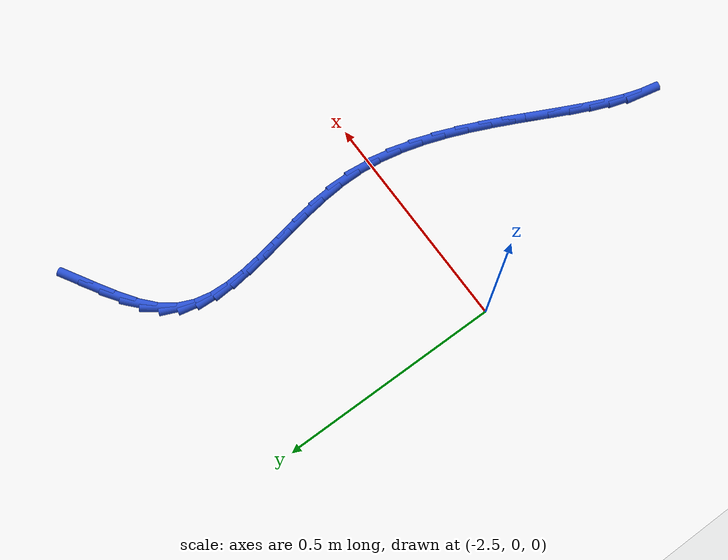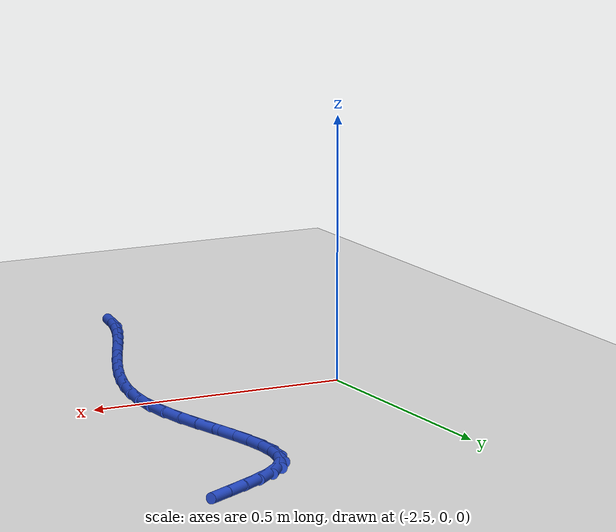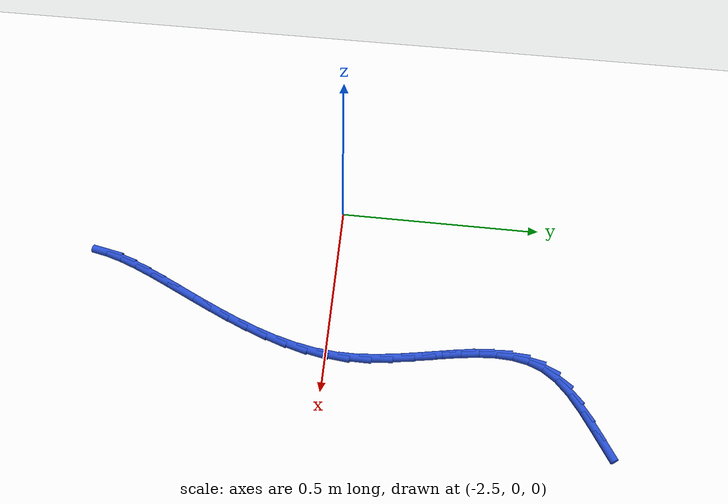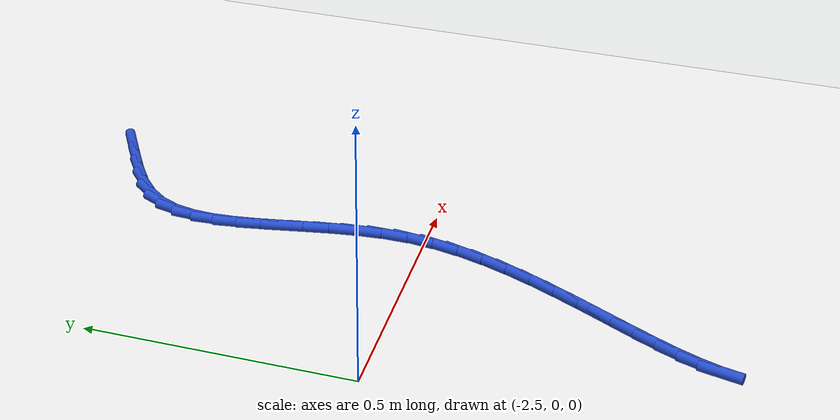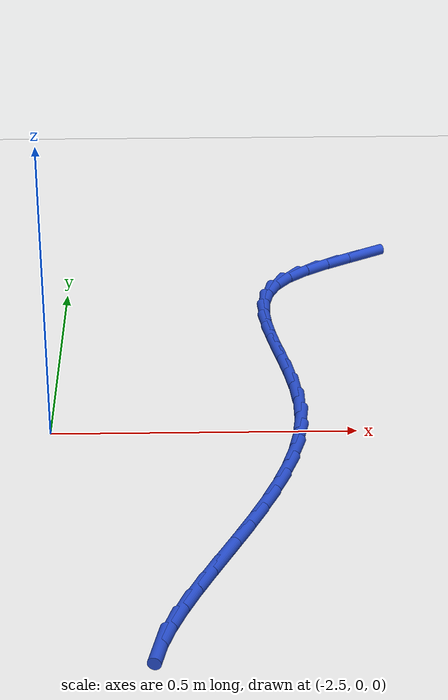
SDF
<sdf version="1.6">
 <world name="default">
  <model name="ground_plane">
   <static>1</static>
   <link name="link">
    <collision name="collision">
     <geometry><plane><normal>0 0 1</normal><size>100 100</size></plane></geometry>
     <surface><friction><ode><mu>100</mu><mu2>50</mu2></ode></friction></surface>
    </collision>
    <visual name="visual">
     <cast_shadows>0</cast_shadows>
     <geometry><plane><normal>0 0 1</normal><size>100 100</size></plane></geometry>
     <material>
      <script><uri>file://media/materials/scripts/gazebo.material</uri><name>Gazebo/WhiteGlow</name></script>
     </material>
    </visual>
   </link>
  </model>
  <model name="line">
   <link name="link_75">
    <pose>-1.9325983767863815 0.6531765410660323 0.01 0 1.57 0.5310814304035765</pose>
    <collision name="collision">
     <geometry><cylinder><radius>0.01</radius><length>0.08</length></cylinder></geometry>
    </collision>
    <visual name="visual">
     <material>
      <script><name>Gazebo/Blue</name><uri>file://media/materials/scripts/gazebo.material</uri></script>
     </material>
     <geometry><cylinder><radius>0.01</radius><length>0.08</length></cylinder></geometry>
    </visual>
   </link>
   <link name="link_76">
    <pose>-1.975630938828137 0.6279004784918562 0.01 0 1.57 0.5468164744232249</pose>
    <collision name="collision">
     <geometry><cylinder><radius>0.01</radius><length>0.08</length></cylinder></geometry>
    </collision>
    <visual name="visual">
     <material>
      <script><name>Gazebo/Blue</name><uri>file://media/materials/scripts/gazebo.material</uri></script>
     </material>
     <geometry><cylinder><radius>0.01</radius><length>0.08</length></cylinder></geometry>
    </visual>
   </link>
   <link name="link_77">
    <pose>-2.017422548014027 0.6024605249227009 0.01 0 1.57 0.6085418219450672</pose>
    <collision name="collision">
     <geometry><cylinder><radius>0.01</radius><length>0.08</length></cylinder></geometry>
    </collision>
    <visual name="visual">
     <material>
      <script><name>Gazebo/Blue</name><uri>file://media/materials/scripts/gazebo.material</uri></script>
     </material>
     <geometry><cylinder><radius>0.01</radius><length>0.08</length></cylinder></geometry>
    </visual>
   </link>
   <link name="link_78">
    <pose>-2.0555550667328264 0.5758916699838457 0.01 0 1.57 0.7295828029736275</pose>
    <collision name="collision">
     <geometry><cylinder><radius>0.01</radius><length>0.08</length></cylinder></geometry>
    </collision>
    <visual name="visual">
     <material>
      <script><name>Gazebo/Blue</name><uri>file://media/materials/scripts/gazebo.material</uri></script>
     </material>
     <geometry><cylinder><radius>0.01</radius><length>0.08</length></cylinder></geometry>
    </visual>
   </link>
   <link name="link_79">
    <pose>-2.087610357373314 0.5472289033005686 0.01 0 1.57 0.927959740066827</pose>
    <collision name="collision">
     <geometry><cylinder><radius>0.01</radius><length>0.08</length></cylinder></geometry>
    </collision>
    <visual name="visual">
     <material>
      <script><name>Gazebo/Blue</name><uri>file://media/materials/scripts/gazebo.material</uri></script>
     </material>
     <geometry><cylinder><radius>0.01</radius><length>0.08</length></cylinder></geometry>
    </visual>
   </link>
   <link name="link_80">
    <pose>-2.111328314406282 0.5155611409085498 0.01 0 1.57 1.160115067046089</pose>
    <collision name="collision">
     <geometry><cylinder><radius>0.01</radius><length>0.08</length></cylinder></geometry>
    </collision>
    <visual name="visual">
     <material>
      <script><name>Gazebo/Blue</name><uri>file://media/materials/scripts/gazebo.material</uri></script>
     </material>
     <geometry><cylinder><radius>0.01</radius><length>0.08</length></cylinder></geometry>
    </visual>
   </link>
   <link name="link_81">
    <pose>-2.1265158558447004 0.4806826439760662 0.01 0 1.57 1.3643707255260886</pose>
    <collision name="collision">
     <geometry><cylinder><radius>0.01</radius><length>0.08</length></cylinder></geometry>
    </collision>
    <visual name="visual">
     <material>
      <script><name>Gazebo/Blue</name><uri>file://media/materials/scripts/gazebo.material</uri></script>
     </material>
     <geometry><cylinder><radius>0.01</radius><length>0.08</length></cylinder></geometry>
    </visual>
   </link>
   <link name="link_82">
    <pose>-2.1344314247722513 0.44288298788653424 0.01 0 1.57 1.5230325087027914</pose>
    <collision name="collision">
     <geometry><cylinder><radius>0.01</radius><length>0.08</length></cylinder></geometry>
    </collision>
    <visual name="visual">
     <material>
      <script><name>Gazebo/Blue</name><uri>file://media/materials/scripts/gazebo.material</uri></script>
     </material>
     <geometry><cylinder><radius>0.01</radius><length>0.08</length></cylinder></geometry>
    </visual>
   </link>
   <link name="link_83">
    <pose>-2.1363635542602153 0.4024620158436733 0.01 0 1.57 -1.506248338405666</pose>
    <collision name="collision">
     <geometry><cylinder><radius>0.01</radius><length>0.08</length></cylinder></geometry>
    </collision>
    <visual name="visual">
     <material>
      <script><name>Gazebo/Blue</name><uri>file://media/materials/scripts/gazebo.material</uri></script>
     </material>
     <geometry><cylinder><radius>0.01</radius><length>0.08</length></cylinder></geometry>
    </visual>
   </link>
   <link name="link_84">
    <pose>-2.1336007773798773 0.35971957105120494 0.01 0 1.57 -1.4338442575977404</pose>
    <collision name="collision">
     <geometry><cylinder><radius>0.01</radius><length>0.08</length></cylinder></geometry>
    </collision>
    <visual name="visual">
     <material>
      <script><name>Gazebo/Blue</name><uri>file://media/materials/scripts/gazebo.material</uri></script>
     </material>
     <geometry><cylinder><radius>0.01</radius><length>0.08</length></cylinder></geometry>
    </visual>
   </link>
   <link name="link_85">
    <pose>-2.12743162720252 0.3149554967128486 0.01 0 1.57 -1.394380516637745</pose>
    <collision name="collision">
     <geometry><cylinder><radius>0.01</radius><length>0.08</length></cylinder></geometry>
    </collision>
    <visual name="visual">
     <material>
      <script><name>Gazebo/Blue</name><uri>file://media/materials/scripts/gazebo.material</uri></script>
     </material>
     <geometry><cylinder><radius>0.01</radius><length>0.08</length></cylinder></geometry>
    </visual>
   </link>
   <link name="link_86">
    <pose>-2.1191446367994278 0.26846963603232554 0.01 0 1.57 -1.3827560793281328</pose>
    <collision name="collision">
     <geometry><cylinder><radius>0.01</radius><length>0.08</length></cylinder></geometry>
    </collision>
    <visual name="visual">
     <material>
      <script><name>Gazebo/Blue</name><uri>file://media/materials/scripts/gazebo.material</uri></script>
     </material>
     <geometry><cylinder><radius>0.01</radius><length>0.08</length></cylinder></geometry>
    </visual>
   </link>
   <link name="link_87">
    <pose>-2.110028339241883 0.22056183221335587 0.01 0 1.57 -1.396030458742246</pose>
    <collision name="collision">
     <geometry><cylinder><radius>0.01</radius><length>0.08</length></cylinder></geometry>
    </collision>
    <visual name="visual">
     <material>
      <script><name>Gazebo/Blue</name><uri>file://media/materials/scripts/gazebo.material</uri></script>
     </material>
     <geometry><cylinder><radius>0.01</radius><length>0.08</length></cylinder></geometry>
    </visual>
   </link>
   <link name="link_88">
    <pose>-2.1013712676011678 0.1715319284596593 0.01 0 1.57 -1.433077609020951</pose>
    <collision name="collision">
     <geometry><cylinder><radius>0.01</radius><length>0.08</length></cylinder></geometry>
    </collision>
    <visual name="visual">
     <material>
      <script><name>Gazebo/Blue</name><uri>file://media/materials/scripts/gazebo.material</uri></script>
     </material>
     <geometry><cylinder><radius>0.01</radius><length>0.08</length></cylinder></geometry>
    </visual>
   </link>
   <link name="link_89">
    <pose>-2.094461954948568 0.12167976797495725 0.01 0 1.57 -1.4940628515996888</pose>
    <collision name="collision">
     <geometry><cylinder><radius>0.01</radius><length>0.08</length></cylinder></geometry>
    </collision>
    <visual name="visual">
     <material>
      <script><name>Gazebo/Blue</name><uri>file://media/materials/scripts/gazebo.material</uri></script>
     </material>
     <geometry><cylinder><radius>0.01</radius><length>0.08</length></cylinder></geometry>
    </visual>
   </link>
   <link name="link_90">
    <pose>-2.0905889343553654 0.07130519396296965 0.01 0 1.57 1.561871067462007</pose>
    <collision name="collision">
     <geometry><cylinder><radius>0.01</radius><length>0.08</length></cylinder></geometry>
    </collision>
    <visual name="visual">
     <material>
      <script><name>Gazebo/Blue</name><uri>file://media/materials/scripts/gazebo.material</uri></script>
     </material>
     <geometry><cylinder><radius>0.01</radius><length>0.08</length></cylinder></geometry>
    </visual>
   </link>
   <link name="link_91">
    <pose>-2.0910405391108355 0.020708035167543035 0.01 0 1.57 1.4598494476639219</pose>
    <collision name="collision">
     <geometry><cylinder><radius>0.01</radius><length>0.08</length></cylinder></geometry>
    </collision>
    <visual name="visual">
     <material>
      <script><name>Gazebo/Blue</name><uri>file://media/materials/scripts/gazebo.material</uri></script>
     </material>
     <geometry><cylinder><radius>0.01</radius><length>0.08</length></cylinder></geometry>
    </visual>
   </link>
   <link name="link_92">
    <pose>-2.096672168471097 -0.029843214678997743 0.01 0 1.57 1.3686171295703724</pose>
    <collision name="collision">
     <geometry><cylinder><radius>0.01</radius><length>0.08</length></cylinder></geometry>
    </collision>
    <visual name="visual">
     <material>
      <script><name>Gazebo/Blue</name><uri>file://media/materials/scripts/gazebo.material</uri></script>
     </material>
     <geometry><cylinder><radius>0.01</radius><length>0.08</length></cylinder></geometry>
    </visual>
   </link>
   <link name="link_93">
    <pose>-2.1069897278088767 -0.08017773586194539 0.01 0 1.57 1.293029440242554</pose>
    <collision name="collision">
     <geometry><cylinder><radius>0.01</radius><length>0.08</length></cylinder></geometry>
    </collision>
    <visual name="visual">
     <material>
      <script><name>Gazebo/Blue</name><uri>file://media/materials/scripts/gazebo.material</uri></script>
     </material>
     <geometry><cylinder><radius>0.01</radius><length>0.08</length></cylinder></geometry>
    </visual>
   </link>
   <link name="link_94">
    <pose>-2.121236924390905 -0.13014368610898364 0.01 0 1.57 1.2320581775326942</pose>
    <collision name="collision">
     <geometry><cylinder><radius>0.01</radius><length>0.08</length></cylinder></geometry>
    </collision>
    <visual name="visual">
     <material>
      <script><name>Gazebo/Blue</name><uri>file://media/materials/scripts/gazebo.material</uri></script>
     </material>
     <geometry><cylinder><radius>0.01</radius><length>0.08</length></cylinder></geometry>
    </visual>
   </link>
   <link name="link_95">
    <pose>-2.138657465483914 -0.17958922314779507 0.01 0 1.57 1.184501088578828</pose>
    <collision name="collision">
     <geometry><cylinder><radius>0.01</radius><length>0.08</length></cylinder></geometry>
    </collision>
    <visual name="visual">
     <material>
      <script><name>Gazebo/Blue</name><uri>file://media/materials/scripts/gazebo.material</uri></script>
     </material>
     <geometry><cylinder><radius>0.01</radius><length>0.08</length></cylinder></geometry>
    </visual>
   </link>
   <link name="link_96">
    <pose>-2.158495058354636 -0.22836250470606237 0.01 0 1.57 1.1493095655729528</pose>
    <collision name="collision">
     <geometry><cylinder><radius>0.01</radius><length>0.08</length></cylinder></geometry>
    </collision>
    <visual name="visual">
     <material>
      <script><name>Gazebo/Blue</name><uri>file://media/materials/scripts/gazebo.material</uri></script>
     </material>
     <geometry><cylinder><radius>0.01</radius><length>0.08</length></cylinder></geometry>
    </visual>
   </link>
   <link name="link_97">
    <pose>-2.1799934102698026 -0.27631168851146815 0.01 0 1.57 1.1257767326760582</pose>
    <collision name="collision">
     <geometry><cylinder><radius>0.01</radius><length>0.08</length></cylinder></geometry>
    </collision>
    <visual name="visual">
     <material>
      <script><name>Gazebo/Blue</name><uri>file://media/materials/scripts/gazebo.material</uri></script>
     </material>
     <geometry><cylinder><radius>0.01</radius><length>0.08</length></cylinder></geometry>
    </visual>
   </link>
   <link name="link_98">
    <pose>-2.2023962284961462 -0.3232849322916961 0.01 0 1.57 1.113656551453875</pose>
    <collision name="collision">
     <geometry><cylinder><radius>0.01</radius><length>0.08</length></cylinder></geometry>
    </collision>
    <visual name="visual">
     <material>
      <script><name>Gazebo/Blue</name><uri>file://media/materials/scripts/gazebo.material</uri></script>
     </material>
     <geometry><cylinder><radius>0.01</radius><length>0.08</length></cylinder></geometry>
    </visual>
   </link>
   <link name="link_99">
    <pose>-2.2249472203003986 -0.3691303937744269 0.01 0 1.57 1.113271480733212</pose>
    <collision name="collision">
     <geometry><cylinder><radius>0.01</radius><length>0.08</length></cylinder></geometry>
    </collision>
    <visual name="visual">
     <material>
      <script><name>Gazebo/Blue</name><uri>file://media/materials/scripts/gazebo.material</uri></script>
     </material>
     <geometry><cylinder><radius>0.01</radius><length>0.08</length></cylinder></geometry>
    </visual>
   </link>
   <link name="link_100">
    <pose>-2.246890092949291 -0.4136962306873442 0.01 0 1.57 1.1256538616726783</pose>
    <collision name="collision">
     <geometry><cylinder><radius>0.01</radius><length>0.08</length></cylinder></geometry>
    </collision>
    <visual name="visual">
     <material>
      <script><name>Gazebo/Blue</name><uri>file://media/materials/scripts/gazebo.material</uri></script>
     </material>
     <geometry><cylinder><radius>0.01</radius><length>0.08</length></cylinder></geometry>
    </visual>
   </link>
   <link name="link_101">
    <pose>-2.2674685537095556 -0.45683060075813064 0.01 0 1.57 1.152760564336301</pose>
    <collision name="collision">
     <geometry><cylinder><radius>0.01</radius><length>0.08</length></cylinder></geometry>
    </collision>
    <visual name="visual">
     <material>
      <script><name>Gazebo/Blue</name><uri>file://media/materials/scripts/gazebo.material</uri></script>
     </material>
     <geometry><cylinder><radius>0.01</radius><length>0.08</length></cylinder></geometry>
    </visual>
   </link>
   <link name="link_102">
    <pose>-2.285926309847925 -0.49838166171446896 0.01 0 1.57 1.1977950955388605</pose>
    <collision name="collision">
     <geometry><cylinder><radius>0.01</radius><length>0.08</length></cylinder></geometry>
    </collision>
    <visual name="visual">
     <material>
      <script><name>Gazebo/Blue</name><uri>file://media/materials/scripts/gazebo.material</uri></script>
     </material>
     <geometry><cylinder><radius>0.01</radius><length>0.08</length></cylinder></geometry>
    </visual>
   </link>
   <link name="link_103">
    <pose>-2.30150706863113 -0.5381975712840424 0.01 0 1.57 1.2656388557191853</pose>
    <collision name="collision">
     <geometry><cylinder><radius>0.01</radius><length>0.08</length></cylinder></geometry>
    </collision>
    <visual name="visual">
     <material>
      <script><name>Gazebo/Blue</name><uri>file://media/materials/scripts/gazebo.material</uri></script>
     </material>
     <geometry><cylinder><radius>0.01</radius><length>0.08</length></cylinder></geometry>
    </visual>
   </link>
   <link name="link_104">
    <pose>-2.3134545373259026 -0.5761264871945323 0.01 0 1.57 1.363244617586579</pose>
    <collision name="collision">
     <geometry><cylinder><radius>0.01</radius><length>0.08</length></cylinder></geometry>
    </collision>
    <visual name="visual">
     <material>
      <script><name>Gazebo/Blue</name><uri>file://media/materials/scripts/gazebo.material</uri></script>
     </material>
     <geometry><cylinder><radius>0.01</radius><length>0.08</length></cylinder></geometry>
    </visual>
   </link>
  </model>
 </world>
</sdf>
